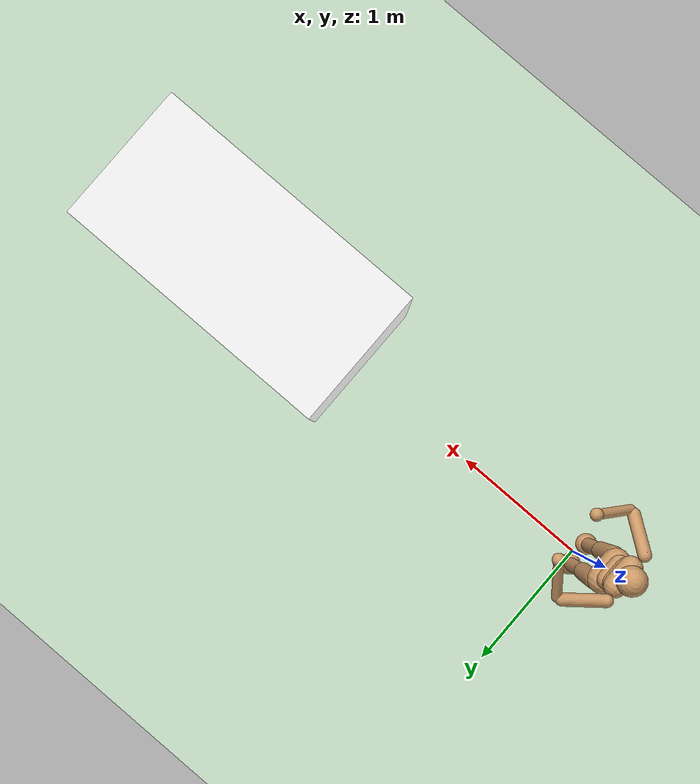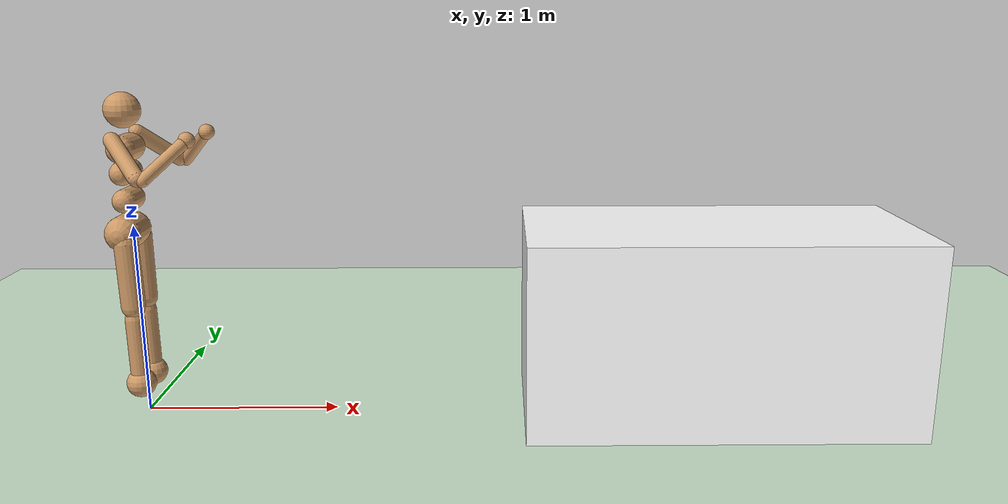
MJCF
<mujoco model="humanoid_collision">

    <size njmax='5000' nconmax='5000'/>

    <include file="assets/humanoid.xml"/>

    <visual>
    <global offwidth="2560" offheight="1920" />
    <quality shadowsize="4096" offsamples="8" />
    <map force="0.1" fogend="5" />
    </visual>

    <compiler angle="degree" inertiafromgeom="true"/>
    <worldbody>
        <camera name='left_cap' pos='-1.2 -0.5 1.8' quat='0.78 0.49 -0.22 -0.32' />
        <camera name='right_cap' pos='1.2 -0.5 1.8' quat='0.76 0.5 0.21 0.35'/>

        <body name='dump_car' pos='3 0 0.5'>
    		<geom name="car" type="box" pos="0 0 0" rgba="1.0 1.0 1.0 1.0" size="1 0.5 0.5" mass="1" contype="3" conaffinity="1"></geom>
			<joint name="car_x" axis="1 0 0" range="-100 100" type="slide"></joint>
			<joint name="car_y" axis="0 0 1" range="-1800 1800" type="hinge"></joint>
        </body>
    </worldbody>

    <actuator>
		<motor name="vel_car_x" ctrlrange="-500 0" gear="1000" joint="car_x"/>
		<motor name="vel_car_y" ctrlrange="-500 500" gear="1000" joint="car_y"/>
    </actuator>

    <keyframe>
        <key time="0" name="init_1" qpos='0 0 1.28572 1 0 0 0 0 0.06545 0.000654416 -0.000519518 0.000295813 -0.0287039 -0.148354 0.000723226 0.000288589 -0.0262428 -0.143245 0.214862 -0.140007 -0.0754472 -0.214553 0.140187 -0.0754199 0 0'/>
        <key time="1" name="init_2" qpos='0 0 1.28572 1 0 0 1 0 0.06545 0.000654416 -0.000519518 0.000295813 -0.0287039 -0.148354 0.000723226 0.000288589 -0.0262428 -0.143245 0.214862 -0.140007 -0.0754472 -0.214553 0.140187 -0.0754199 0 0'/>
        <key time="2" name="init_3" qpos='0 0 1.28572 1 0 0 2 0 0.06545 0.000654416 -0.000519518 0.000295813 -0.0287039 -0.148354 0.000723226 0.000288589 -0.0262428 -0.143245 0.214862 -0.140007 -0.0754472 -0.214553 0.140187 -0.0754199 0 0'/>
        <key time="3" name="init_4" qpos='0 0 1.28572 1 0 0 -1 0 0.06545 0.000654416 -0.000519518 0.000295813 -0.0287039 -0.148354 0.000723226 0.000288589 -0.0262428 -0.143245 0.214862 -0.140007 -0.0754472 -0.214553 0.140187 -0.0754199 0 0'/>
        <key time="4" name="init_5" qpos='0 0 1.28572 1 0 0 -2 0 0.06545 0.000654416 -0.000519518 0.000295813 -0.0287039 -0.148354 0.000723226 0.000288589 -0.0262428 -0.143245 0.214862 -0.140007 -0.0754472 -0.214553 0.140187 -0.0754199 0 0'/>
        <key time="5" name="stand" qpos='0.133918 -0.0218745 1.19787 0.940614 -0.0140571 0.322482 -0.105132 -0.0622136 -0.0692509 0.164579 -0.00532302 0.00498885 -0.703961 -0.0225129 -0.000738711 -0.00781844 -0.68344 -0.0190305 0.464879 0.18362 -1.57172 -0.599386 0.14829 -1.57106 0 0'/>
        <key time="6" name="one_leg" qpos='0 0 1.28572 1 0 0 0 -6.93048e-05 -0.114761 0.000654416 -0.000519518 0.000295813 -1.56829 -1.67597 0.000723226 0.000288589 -0.0262428 -0.143245 0.7939 -0.52222 -1.571 -0.7939 0.52222 -1.571 0 0'/>
        <key time="7" name="walking_1" qpos='0 0 1.15218 0.704789 0 0 0.709417 -0.0213519 0.010472 -0.0364225 0.0969587 0.0575317 -0.864868 -0.669271 -0.0103317 -0.059692 0.3491 -0.503785 1.047 -1.30683 -1.31441 -0.390818 0.0362636 -1.31161 0 0'/>
        <key time="8" name="walking_2" qpos='0 0 1.15218 -0.909417 0 0 0.709417 0.7854 0.010472 -0.0364225 0.0969587 0.0575317 -0.864868 -0.669271 -0.0103317 -0.059692 0.3491 -0.503785 1.047 -1.30683 -1.31441 -0.390818 0.0362636 -1.31161 0 0'/>
        <key time="9" name="walking_3" qpos='0 0 1.15218 -0.609417 0 0 0.709417 0.7854 0.010472 -0.0364225 0.0969587 0.0575317 -0.864868 -0.669271 -0.0103317 -0.059692 0.3491 -0.503785 1.047 -1.30683 -1.31441 -0.390818 0.0362636 -1.31161 0 0'/>
        <key time="10" name="walking_4" qpos='0 0 1.15218 -0.309417 0 0 0.709417 0.7854 0.010472 -0.0364225 0.0969587 0.0575317 -0.864868 -0.669271 -0.0103317 -0.059692 0.3491 -0.503785 1.047 -1.30683 -1.31441 -0.390818 0.0362636 -1.31161 0 0'/>
        <key time="11" name="walking_5" qpos='0 0 1.15218 0.309417 0 0 0.709417 0.7854 0.010472 -0.0364225 0.0969587 0.0575317 -0.864868 -0.669271 -0.0103317 -0.059692 0.3491 -0.503785 1.047 -1.30683 -1.31441 -0.390818 0.0362636 -1.31161 0 0'/>
        <key time="12" name="walking_6" qpos='0 0 1.15218 0.609417 0 0 0.709417 0.7854 0.010472 -0.0364225 0.0969587 0.0575317 -0.864868 -0.669271 -0.0103317 -0.059692 0.3491 -0.503785 1.047 -1.30683 -1.31441 -0.390818 0.0362636 -1.31161 0 0'/>

        <key time="13" name="surprise_1" qpos='-0.0247077 -0.000554168 1.28613 1 0 0 0 4.20628e-05 -0.0776927 0.000107764 -0.0015404 0.000707295 -0.0126417 -0.21985 0.00177397 0.000678935 -0.00984868 -0.211776 -1.05052 0.517307 -1.4879 1.06716 -0.439106 -1.4884 0 0'/>
        <key time="14" name="surprise_2" qpos='-0.0580248 -0.00317346 1.16502 0.999982 -0.00441152 -0.00016676 0.00394072 -4.14041e-05 -0.266755 0.0144528 -0.438733 0.100592 -0.111054 -0.777751 -0.440153 0.0967707 -0.109151 -0.744821 -0.559966 0.391627 -1.46381 0.597003 -0.33199 -1.46568 0 0'/>
        <key time="15" name="surprise_3" qpos='-0.0804532 0.0102183 0.838432 0.996145 -0.0223562 -0.0652728 0.0541826 0.0082079 -0.383359 -0.0252497 -0.0198007 -0.0195727 -1.07999 -1.87852 -0.0169261 0.0553656 0.245456 -1.93946 0.7051 -0.456283 -1.57155 -0.682847 0.380951 -1.57126 0.000180682 0.000591009'/>
        <key time="16" name="defense_1" qpos='-0.0247077 -0.000554168 1.28613 1 0 0 0 4.20628e-05 -0.0776927 0.000107764 -0.0015404 0.000707295 -1.92 -0.903708 0.00177397 0.000678935 -0.00984868 -0.211776 -0.028675 1.047 -1.571 0.155225 -1.047 -1.571 0 0'/>
        <key time="17" name="defense_2" qpos='-0.0247077 -0.000554168 1.28613 1 0 0 0 4.20628e-05 -0.0776927 0.000107764 -0.0015404 0.000707295 -1.62502 -1.82767 0.00177397 0.000678935 -0.00984868 -0.03491 0.2877 0.426905 -1.571 0.155225 -0.705315 -1.571 0 0'/>
        <key time="18" name="defense_3" qpos='0 0 1.15218 -0.788472 0 0 0.61507 0.7854 0.010472 -0.0364225 0.0969587 0.0575317 -0.864868 -0.669271 -0.0103317 -0.059692 0.3491 -0.503785 1.047 -1.30683 -1.31441 0.85125 0.534875 -1.571 0 0'/>
        <key time="19" name="defense_4"  qpos='0 0 1.28572 1 0 0 0 0 0.06545 0.000654416 -0.000519518 0.000295813 -0.0287039 -0.148354 0.000723226 0.000288589 -0.0262428 -0.143245 0.755935 0.604075 -1.571 0.155225 -1.047 -1.571 0 0'/>

        <key time="20" name="test" qpos=' 0 0 1.28572 1 0 0 0 0 0.42813881 0 -0.43633231 0  -0.83914233 -1.12583651 -0.43414364 0  -0.69201463 -1.73617797 -0.28624896 -0.896553 0.33814117 0.08905295 0.54203417 0.29885724 0 0'/>

        <key time="21" name="corrected" qpos='0.0578824 -0.00103405 1.10093 1 -2.86229e-17 3.38271e-17 -1.73472e-18 0 0.428139 0 -0.436332 0 -0.839142 -1.12584 -0.434144 0 -0.692015 -1.73618 -0.286249 -0.896553 0.338141 0.089053 0.542034 0.298857 0 0'/>
    </keyframe>
</mujoco>

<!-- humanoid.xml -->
<mujoco model="humanoid">
    <compiler angle="degree" inertiafromgeom="true"/>
    <default>
        <joint armature="1" damping="1" limited="true"/>
        <geom conaffinity="1" condim="1" contype="1" margin="0.001" material="geom" rgba="0.8 0.6 .4 1"/>
        <motor ctrllimited="true" ctrlrange="-.4 .4"/>
    </default>
    <option integrator="RK4" iterations="50" solver="PGS" timestep="0.003">
    </option>
    <size nkey="5" nuser_geom="1"/>
    <visual>
        <map fogend="5" fogstart="3"/>
    </visual>
    <asset>
        <texture builtin="gradient" height="100" rgb1=".4 .5 .6" rgb2="0 0 0" type="skybox" width="100"/>
        <texture builtin="flat" height="1278" mark="cross" markrgb="1 1 1" name="texgeom" random="0.01" rgb1="0.8 0.6 0.4" rgb2="0.8 0.6 0.4" type="cube" width="127"/>
        <texture builtin="checker" height="100" name="texplane" rgb1="0 0 0" rgb2="0.8 0.8 0.8" type="2d" width="100"/>
        <material name="MatPlane" reflectance="0.5" shininess="1" specular="1" texrepeat="60 60" texture="texplane"/>
        <material name="geom" texture="texgeom" texuniform="true"/>
    </asset>
    <worldbody>
        <light cutoff="100" diffuse="1 1 1" dir="-0 0 -1.3" directional="true" exponent="1" pos="0 0 1.3" specular=".1 .1 .1"/>
        <geom condim="3" friction="1 .1 .1" material="MatPlane" name="floor" pos="0 0 0" rgba="0.8 0.9 0.8 1" size="20 20 0.125" type="plane"/>
        <body name="torso" pos="0 0 1.4">
            <camera name="track" mode="trackcom" pos="0 -4 0" xyaxes="1 0 0 0 0 1"/>
            <joint armature="0" damping="0" limited="false" name="root" pos="0 0 0" stiffness="0" type="free"/>
            <geom fromto="0 -.07 0 0 .07 0" name="torso1" size="0.07" type="capsule"/>
            <geom name="head" pos="0 0 .19" size=".09" type="sphere" user="258"/>
            <geom fromto="-.01 -.06 -.12 -.01 .06 -.12" name="uwaist" size="0.06" type="capsule"/>
            <body name="lwaist" pos="-.01 0 -0.260" quat="1.000 0 -0.002 0">
                <geom fromto="0 -.06 0 0 .06 0" name="lwaist" size="0.06" type="capsule"/>
                <joint armature="0.02" axis="0 0 1" damping="5" name="abdomen_z" pos="0 0 0.065" range="-45 45" stiffness="20" type="hinge"/>
                <joint armature="0.02" axis="0 1 0" damping="5" name="abdomen_y" pos="0 0 0.065" range="-75 30" stiffness="10" type="hinge"/>
                <body name="pelvis" pos="0 0 -0.165" quat="1.000 0 -0.002 0">
                    <joint armature="0.02" axis="1 0 0" damping="5" name="abdomen_x" pos="0 0 0.1" range="-35 35" stiffness="10" type="hinge"/>
                    <geom fromto="-.02 -.07 0 -.02 .07 0" name="butt" size="0.09" type="capsule"/>
                    <body name="right_thigh" pos="0 -0.1 -0.04">
                        <joint armature="0.01" axis="1 0 0" damping="5" name="right_hip_x" pos="0 0 0" range="-25 5" stiffness="10" type="hinge"/>
                        <joint armature="0.01" axis="0 0 1" damping="5" name="right_hip_z" pos="0 0 0" range="-60 35" stiffness="10" type="hinge"/>
                        <joint armature="0.0080" axis="0 1 0" damping="5" name="right_hip_y" pos="0 0 0" range="-110 20" stiffness="20" type="hinge"/>
                        <geom fromto="0 0 0 0 0.01 -.34" name="right_thigh1" size="0.06" type="capsule"/>
                        <body name="right_shin" pos="0 0.01 -0.403">
                            <joint armature="0.0060" axis="0 -1 0" name="right_knee" pos="0 0 .02" range="-160 -2" type="hinge"/>
                            <geom fromto="0 0 0 0 0 -.3" name="right_shin1" size="0.049" type="capsule"/>
                            <body name="right_foot" pos="0 0 -0.45">
                                <geom name="right_foot" pos="0 0 0.1" size="0.075" type="sphere" user="0"/>
                            </body>
                        </body>
                    </body>
                    <body name="left_thigh" pos="0 0.1 -0.04">
                        <joint armature="0.01" axis="-1 0 0" damping="5" name="left_hip_x" pos="0 0 0" range="-25 5" stiffness="10" type="hinge"/>
                        <joint armature="0.01" axis="0 0 -1" damping="5" name="left_hip_z" pos="0 0 0" range="-60 35" stiffness="10" type="hinge"/>
                        <joint armature="0.01" axis="0 1 0" damping="5" name="left_hip_y" pos="0 0 0" range="-110 20" stiffness="20" type="hinge"/>
                        <geom fromto="0 0 0 0 -0.01 -.34" name="left_thigh1" size="0.06" type="capsule"/>
                        <body name="left_shin" pos="0 -0.01 -0.403">
                            <joint armature="0.0060" axis="0 -1 0" name="left_knee" pos="0 0 .02" range="-160 -2" stiffness="1" type="hinge"/>
                            <geom fromto="0 0 0 0 0 -.3" name="left_shin1" size="0.049" type="capsule"/>
                            <body name="left_foot" pos="0 0 -0.45">
                                <geom name="left_foot" type="sphere" size="0.075" pos="0 0 0.1" user="0" />
                            </body>
                        </body>
                    </body>
                </body>
            </body>
            <body name="right_upper_arm" pos="0 -0.17 0.06">
                <joint armature="0.0068" axis="2 1 1" name="right_shoulder1" pos="0 0 0" range="-85 60" stiffness="1" type="hinge"/>
                <joint armature="0.0051" axis="0 -1 1" name="right_shoulder2" pos="0 0 0" range="-85 60" stiffness="1" type="hinge"/>
                <geom fromto="0 0 0 .16 -.16 -.16" name="right_uarm1" size="0.04 0.16" type="capsule"/>
                <body name="right_lower_arm" pos=".18 -.18 -.18">
                    <joint armature="0.0028" axis="0 -1 1" name="right_elbow" pos="0 0 0" range="-90 50" stiffness="0" type="hinge"/>
                    <geom fromto="0.01 0.01 0.01 .17 .17 .17" name="right_larm" size="0.031" type="capsule"/>
                    <geom name="right_hand" pos=".18 .18 .18" size="0.04" type="sphere"/>
                    <camera pos="0 0 0"/>
                </body>
            </body>
            <body name="left_upper_arm" pos="0 0.17 0.06">
                <joint armature="0.0068" axis="2 -1 1" name="left_shoulder1" pos="0 0 0" range="-60 85" stiffness="1" type="hinge"/>
                <joint armature="0.0051" axis="0 1 1" name="left_shoulder2" pos="0 0 0" range="-60 85" stiffness="1" type="hinge"/>
                <geom fromto="0 0 0 .16 .16 -.16" name="left_uarm1" size="0.04 0.16" type="capsule"/>
                <body name="left_lower_arm" pos=".18 .18 -.18">
                    <joint armature="0.0028" axis="0 -1 -1" name="left_elbow" pos="0 0 0" range="-90 50" stiffness="0" type="hinge"/>
                    <geom fromto="0.01 -0.01 0.01 .17 -.17 .17" name="left_larm" size="0.031" type="capsule"/>
                    <geom name="left_hand" pos=".18 -.18 .18" size="0.04" type="sphere"/>
                </body>
            </body>
        </body>
    </worldbody>
    <tendon>
        <fixed name="left_hipknee">
            <joint coef="-1" joint="left_hip_y"/>
            <joint coef="1" joint="left_knee"/>
        </fixed>
        <fixed name="right_hipknee">
            <joint coef="-1" joint="right_hip_y"/>
            <joint coef="1" joint="right_knee"/>
        </fixed>
    </tendon>

    <actuator>
        <motor gear="100" joint="abdomen_y" name="abdomen_y"/>
        <motor gear="100" joint="abdomen_z" name="abdomen_z"/>
        <motor gear="100" joint="abdomen_x" name="abdomen_x"/>
        <motor gear="100" joint="right_hip_x" name="right_hip_x"/>
        <motor gear="100" joint="right_hip_z" name="right_hip_z"/>
        <motor gear="300" joint="right_hip_y" name="right_hip_y"/>
        <motor gear="200" joint="right_knee" name="right_knee"/>
        <motor gear="100" joint="left_hip_x" name="left_hip_x"/>
        <motor gear="100" joint="left_hip_z" name="left_hip_z"/>
        <motor gear="300" joint="left_hip_y" name="left_hip_y"/>
        <motor gear="200" joint="left_knee" name="left_knee"/>
        <motor gear="25" joint="right_shoulder1" name="right_shoulder1"/>
        <motor gear="25" joint="right_shoulder2" name="right_shoulder2"/>
        <motor gear="25" joint="right_elbow" name="right_elbow"/>
        <motor gear="25" joint="left_shoulder1" name="left_shoulder1"/>
        <motor gear="25" joint="left_shoulder2" name="left_shoulder2"/>
        <motor gear="25" joint="left_elbow" name="left_elbow"/>
    </actuator>

</mujoco>
